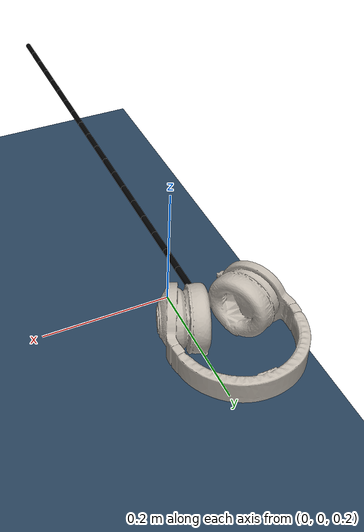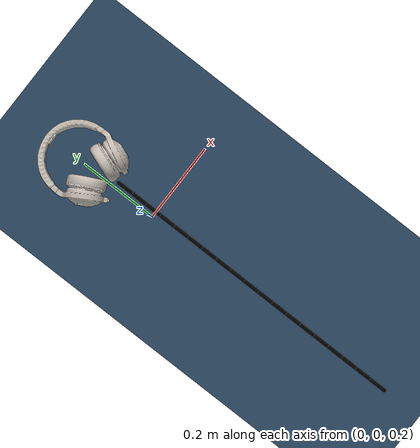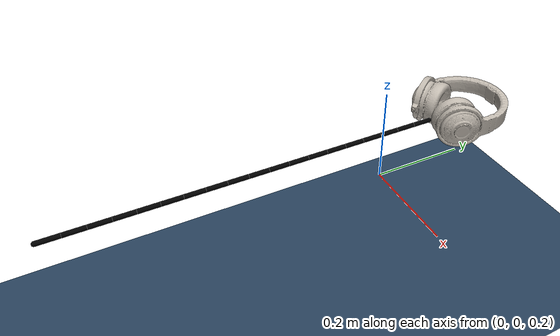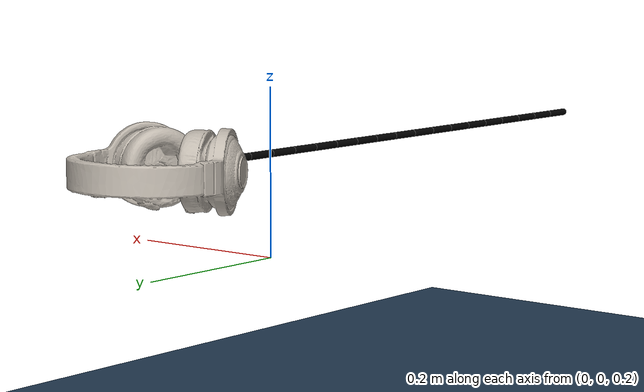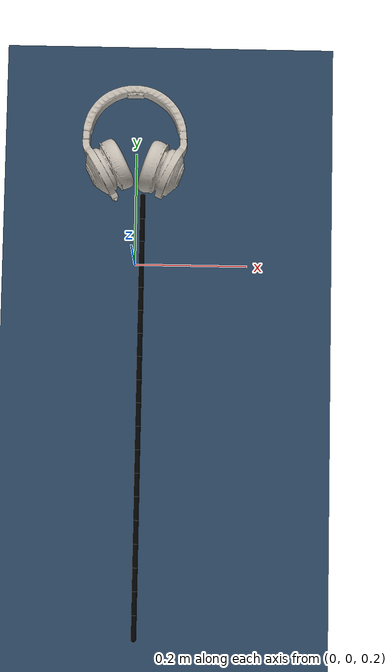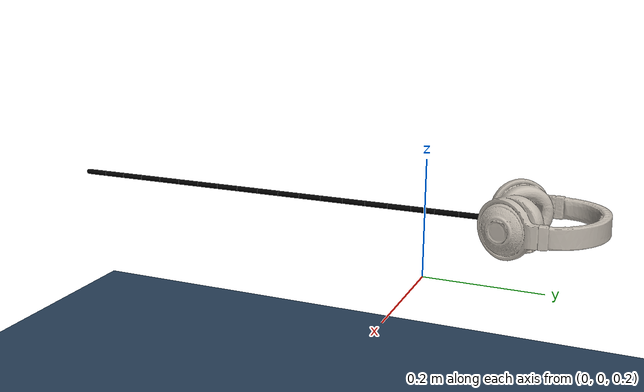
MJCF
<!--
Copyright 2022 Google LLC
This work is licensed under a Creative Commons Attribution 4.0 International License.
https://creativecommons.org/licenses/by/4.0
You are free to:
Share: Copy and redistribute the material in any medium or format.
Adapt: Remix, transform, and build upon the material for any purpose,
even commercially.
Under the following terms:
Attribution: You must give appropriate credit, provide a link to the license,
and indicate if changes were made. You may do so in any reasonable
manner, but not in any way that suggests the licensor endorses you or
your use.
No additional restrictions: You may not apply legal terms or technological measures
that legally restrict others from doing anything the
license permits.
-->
<mujoco model="Razer_Kraken_Pro_headset_Full_size_Black scene">
  <include file="model.xml"/>

  <option>
    <flag multiccd="enable"/>
  </option>

  <statistic center="0 0 0.1" extent="0.4" meansize="0.02"/>

  <visual>
    <headlight diffuse="0.6 0.6 0.6" ambient="0.3 0.3 0.3" specular="0 0 0"/>
    <rgba haze="0.15 0.25 0.35 1"/>
    <global azimuth="120" elevation="-10"/>
  </visual>

  <asset>
    <texture type="skybox" builtin="gradient" rgb1="0.3 0.5 0.7" rgb2="0 0 0" width="512" height="3072"/>
    <texture type="2d" name="groundplane" builtin="checker" mark="edge" rgb1="0.2 0.3 0.4" rgb2="0.1 0.2 0.3"
      markrgb="0.8 0.8 0.8" width="300" height="300"/>
    <material name="groundplane" texture="groundplane" texuniform="true" texrepeat="5 5" reflectance="0.2"/>
  </asset>

  <worldbody>
    <light pos="0 0 1.5" directional="true"/>
    <geom name="floor" size="0 0 0.05" type="plane" material="groundplane"/>
  </worldbody>
</mujoco>

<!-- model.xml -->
<mujoco model="Razer_Kraken_Pro_headset_Full_size_Black">

  <compiler assetdir="meshes" texturedir="materials/textures"/>

  <extension>
    <plugin plugin="mujoco.elasticity.cable">
      <instance name="composite">
        <config key="twist" value="1e2"/>
        <config key="bend" value="4e1"/>
      </instance>
    </plugin>
  </extension>

  <custom>
    <text name="composite_" data="rope_"/>
  </custom>

  <asset>
    <texture type="2d" name="texture" file="texture.png"/>
    <material name="texture" texture="texture"/>

    <mesh file="model.obj"/>
    <mesh file="coacd_part_003.obj"/>
    <mesh file="coacd_part_004.obj"/>
    <mesh file="coacd_part_007.obj"/>
    <mesh file="coacd_part_008.obj"/>
    <mesh file="coacd_part_010.obj"/>
    <mesh file="coacd_part_011.obj"/>
    <mesh file="coacd_part_012.obj"/>
    <mesh file="coacd_part_014.obj"/>
    <mesh file="coacd_part_015.obj"/>
    <mesh file="coacd_part_016.obj"/>
    <mesh file="coacd_part_017.obj"/>
    <mesh file="coacd_part_018.obj"/>
    <mesh file="coacd_part_019.obj"/>
    <mesh file="coacd_part_020.obj"/>
    <mesh file="coacd_part_021.obj"/>
    <mesh file="coacd_part_022.obj"/>
    <mesh file="coacd_part_023.obj"/>
    <mesh file="coacd_part_024.obj"/>
    <mesh file="coacd_part_025.obj"/>
    <mesh file="coacd_part_026.obj"/>
    <mesh file="coacd_part_027.obj"/>
    <mesh file="coacd_part_028.obj"/>
    <mesh file="coacd_part_029.obj"/>
    <mesh file="coacd_part_030.obj"/>
    <mesh file="coacd_part_031.obj"/>
    <mesh file="coacd_part_032.obj"/>
    <mesh file="coacd_part_033.obj"/>
    <mesh file="coacd_part_034.obj"/>
    <mesh file="coacd_part_035.obj"/>
    <mesh file="coacd_part_036.obj"/>
    <mesh file="coacd_part_037.obj"/>
    <mesh file="coacd_part_038.obj"/>
    <mesh file="coacd_part_039.obj"/>
    <mesh file="coacd_part_040.obj"/>
    <mesh file="coacd_part_041.obj"/>
    <mesh file="coacd_part_042.obj"/>
    <mesh file="coacd_part_043.obj"/>
  </asset>

  <default>
    <default class="Razer_Kraken_Pro_headset_Full_size_Black">
      <default class="visual_Razer_Kraken_Pro_headset_Full_size_Black">
        <geom type="mesh" group="2" density="200" contype="0" conaffinity="0" material="texture"/>
      </default>
      <default class="collision_Razer_Kraken_Pro_headset_Full_size_Black">
        <geom type="mesh" group="3" mass="0.0" density="0" solref=".004 1" friction="1.0 0.01 0.01" condim="6"/>
      </default>
    </default>
  </default>

  <worldbody>
    <body name="headphone_body" childclass="Razer_Kraken_Pro_headset_Full_size_Black" pos="0 0 0.3" euler="-90 0 0">
      <freejoint/>
      <body name="headphone" childclass="Razer_Kraken_Pro_headset_Full_size_Black" pos="0 0 0" euler="0 0 0">
        <geom class="visual_Razer_Kraken_Pro_headset_Full_size_Black" mesh="model"/>
        <geom class="collision_Razer_Kraken_Pro_headset_Full_size_Black" mesh="coacd_part_003" rgba="0.708 0.02 0.97 1"/>
        <geom class="collision_Razer_Kraken_Pro_headset_Full_size_Black" mesh="coacd_part_004" rgba="0.832 0.21 0.18 1"/>
        <geom class="collision_Razer_Kraken_Pro_headset_Full_size_Black" mesh="coacd_part_007" rgba="0.139 0.29 0.37 1"/>
        <geom class="collision_Razer_Kraken_Pro_headset_Full_size_Black" mesh="coacd_part_008" rgba="0.456 0.79 0.20 1"/>
        <geom class="collision_Razer_Kraken_Pro_headset_Full_size_Black" mesh="coacd_part_010" rgba="0.608 0.17 0.07 1"/>
        <geom class="collision_Razer_Kraken_Pro_headset_Full_size_Black" mesh="coacd_part_011" rgba="0.949 0.97 0.81 1"/>
        <geom class="collision_Razer_Kraken_Pro_headset_Full_size_Black" mesh="coacd_part_012" rgba="0.305 0.10 0.68 1"/>
        <geom class="collision_Razer_Kraken_Pro_headset_Full_size_Black" mesh="coacd_part_014" rgba="0.034 0.91 0.26 1"/>
        <geom class="collision_Razer_Kraken_Pro_headset_Full_size_Black" mesh="coacd_part_015" rgba="0.663 0.31 0.52 1"/>
        <geom class="collision_Razer_Kraken_Pro_headset_Full_size_Black" mesh="coacd_part_016" rgba="0.547 0.18 0.97 1"/>
        <geom class="collision_Razer_Kraken_Pro_headset_Full_size_Black" mesh="coacd_part_017" rgba="0.775 0.94 0.89 1"/>
        <geom class="collision_Razer_Kraken_Pro_headset_Full_size_Black" mesh="coacd_part_018" rgba="0.598 0.92 0.09 1"/>
        <geom class="collision_Razer_Kraken_Pro_headset_Full_size_Black" mesh="coacd_part_019" rgba="0.196 0.05 0.33 1"/>
        <geom class="collision_Razer_Kraken_Pro_headset_Full_size_Black" mesh="coacd_part_020" rgba="0.389 0.27 0.83 1"/>
        <geom class="collision_Razer_Kraken_Pro_headset_Full_size_Black" mesh="coacd_part_021" rgba="0.357 0.28 0.54 1"/>
        <geom class="collision_Razer_Kraken_Pro_headset_Full_size_Black" mesh="coacd_part_022" rgba="0.141 0.80 0.07 1"/>
        <geom class="collision_Razer_Kraken_Pro_headset_Full_size_Black" mesh="coacd_part_023" rgba="0.987 0.77 0.20 1"/>
        <geom class="collision_Razer_Kraken_Pro_headset_Full_size_Black" mesh="coacd_part_024" rgba="0.006 0.82 0.71 1"/>
        <geom class="collision_Razer_Kraken_Pro_headset_Full_size_Black" mesh="coacd_part_025" rgba="0.729 0.77 0.07 1"/>
        <geom class="collision_Razer_Kraken_Pro_headset_Full_size_Black" mesh="coacd_part_026" rgba="0.358 0.12 0.86 1"/>
        <geom class="collision_Razer_Kraken_Pro_headset_Full_size_Black" mesh="coacd_part_027" rgba="0.623 0.33 0.06 1"/>
        <geom class="collision_Razer_Kraken_Pro_headset_Full_size_Black" mesh="coacd_part_028" rgba="0.311 0.33 0.73 1"/>
        <geom class="collision_Razer_Kraken_Pro_headset_Full_size_Black" mesh="coacd_part_029" rgba="0.638 0.89 0.47 1"/>
        <geom class="collision_Razer_Kraken_Pro_headset_Full_size_Black" mesh="coacd_part_030" rgba="0.120 0.71 0.76 1"/>
        <geom class="collision_Razer_Kraken_Pro_headset_Full_size_Black" mesh="coacd_part_031" rgba="0.561 0.77 0.49 1"/>
        <geom class="collision_Razer_Kraken_Pro_headset_Full_size_Black" mesh="coacd_part_032" rgba="0.523 0.43 0.03 1"/>
        <geom class="collision_Razer_Kraken_Pro_headset_Full_size_Black" mesh="coacd_part_033" rgba="0.108 0.03 0.64 1"/>
        <geom class="collision_Razer_Kraken_Pro_headset_Full_size_Black" mesh="coacd_part_034" rgba="0.314 0.51 0.91 1"/>
        <geom class="collision_Razer_Kraken_Pro_headset_Full_size_Black" mesh="coacd_part_035" rgba="0.249 0.41 0.76 1"/>
        <geom class="collision_Razer_Kraken_Pro_headset_Full_size_Black" mesh="coacd_part_036" rgba="0.229 0.08 0.29 1"/>
        <geom class="collision_Razer_Kraken_Pro_headset_Full_size_Black" mesh="coacd_part_037" rgba="0.161 0.93 0.81 1"/>
        <geom class="collision_Razer_Kraken_Pro_headset_Full_size_Black" mesh="coacd_part_038" rgba="0.633 0.87 0.80 1"/>
        <geom class="collision_Razer_Kraken_Pro_headset_Full_size_Black" mesh="coacd_part_039" rgba="0.187 0.89 0.54 1"/>
        <geom class="collision_Razer_Kraken_Pro_headset_Full_size_Black" mesh="coacd_part_040" rgba="0.807 0.90 0.32 1"/>
        <geom class="collision_Razer_Kraken_Pro_headset_Full_size_Black" mesh="coacd_part_041" rgba="0.110 0.23 0.43 1"/>
        <geom class="collision_Razer_Kraken_Pro_headset_Full_size_Black" mesh="coacd_part_042" rgba="0.818 0.86 0.01 1"/>
        <geom class="collision_Razer_Kraken_Pro_headset_Full_size_Black" mesh="coacd_part_043" rgba="0.511 0.42 0.22 1"/>
      </body>

      <body name="cable_body" pos="0 0 0.3">
        <body name="B_first" pos="0.015 -0.02 -0.2" quat="0 -0.707107 0 0.707107">
          <joint name="J_first" pos="0 0 0" type="ball" group="3" actuatorfrclimited="false" damping="0.001"/>
          <geom name="G0" size="0.0045 0.0197368" pos="0.0197368 0 0" quat="0.707107 0 -0.707107 0" type="capsule" friction="0.1 0.001 0.001" rgba="0 0 0 1"/>
          <site name="S_first" pos="0 0 0" group="3"/>
          <plugin instance="composite"/>
          <body name="B_1" pos="0.0394737 0 0">
            <joint name="J_1" pos="0 0 0" type="ball" group="3" actuatorfrclimited="false" damping="0.001"/>
            <geom name="G1" size="0.0045 0.0197368" pos="0.0197368 0 0" quat="0.707107 0 -0.707107 0" type="capsule" friction="0.1 0.001 0.001" rgba="0 0 0 1"/>
            <plugin instance="composite"/>
            <body name="B_2" pos="0.0394737 0 0">
              <joint name="J_2" pos="0 0 0" type="ball" group="3" actuatorfrclimited="false" damping="0.001"/>
              <geom name="G2" size="0.0045 0.0197368" pos="0.0197368 0 0" quat="0.707107 0 -0.707107 0" type="capsule" friction="0.1 0.001 0.001" rgba="0 0 0 1"/>
              <plugin instance="composite"/>
              <body name="B_3" pos="0.0394737 0 0">
                <joint name="J_3" pos="0 0 0" type="ball" group="3" actuatorfrclimited="false" damping="0.001"/>
                <geom name="G3" size="0.0045 0.0197368" pos="0.0197368 0 0" quat="0.707107 0 -0.707107 0" type="capsule" friction="0.1 0.001 0.001" rgba="0 0 0 1"/>
                <plugin instance="composite"/>
                <body name="B_4" pos="0.0394737 0 0">
                  <joint name="J_4" pos="0 0 0" type="ball" group="3" actuatorfrclimited="false" damping="0.001"/>
                  <geom name="G4" size="0.0045 0.0197368" pos="0.0197368 0 0" quat="0.707107 0 -0.707107 0" type="capsule" friction="0.1 0.001 0.001" rgba="0 0 0 1"/>
                  <plugin instance="composite"/>
                  <body name="B_5" pos="0.0394737 0 0">
                    <joint name="J_5" pos="0 0 0" type="ball" group="3" actuatorfrclimited="false" damping="0.001"/>
                    <geom name="G5" size="0.0045 0.0197368" pos="0.0197368 0 0" quat="0.707107 0 -0.707107 0" type="capsule" friction="0.1 0.001 0.001" rgba="0 0 0 1"/>
                    <plugin instance="composite"/>
                    <body name="B_6" pos="0.0394737 0 0">
                      <joint name="J_6" pos="0 0 0" type="ball" group="3" actuatorfrclimited="false" damping="0.001"/>
                      <geom name="G6" size="0.0045 0.0197368" pos="0.0197368 0 0" quat="0.707107 0 -0.707107 0" type="capsule" friction="0.1 0.001 0.001" rgba="0 0 0 1"/>
                      <plugin instance="composite"/>
                      <body name="B_7" pos="0.0394737 0 0">
                        <joint name="J_7" pos="0 0 0" type="ball" group="3" actuatorfrclimited="false" damping="0.001"/>
                        <geom name="G7" size="0.0045 0.0197368" pos="0.0197368 0 0" quat="0.707107 0 -0.707107 0" type="capsule" friction="0.1 0.001 0.001" rgba="0 0 0 1"/>
                        <plugin instance="composite"/>
                        <body name="B_8" pos="0.0394737 0 0">
                          <joint name="J_8" pos="0 0 0" type="ball" group="3" actuatorfrclimited="false" damping="0.001"/>
                          <geom name="G8" size="0.0045 0.0197368" pos="0.0197368 0 0" quat="0.707107 0 -0.707107 0" type="capsule" friction="0.1 0.001 0.001" rgba="0 0 0 1"/>
                          <plugin instance="composite"/>
                          <body name="B_9" pos="0.0394737 0 0">
                            <joint name="J_9" pos="0 0 0" type="ball" group="3" actuatorfrclimited="false" damping="0.001"/>
                            <geom name="G9" size="0.0045 0.0197369" pos="0.0197369 0 0" quat="0.707107 0 -0.707107 0" type="capsule" friction="0.1 0.001 0.001" rgba="0 0 0 1"/>
                            <plugin instance="composite"/>
                            <body name="B_10" pos="0.0394737 0 0">
                              <joint name="J_10" pos="0 0 0" type="ball" group="3" actuatorfrclimited="false" damping="0.001"/>
                              <geom name="G10" size="0.0045 0.0197368" pos="0.0197368 0 0" quat="0.707107 0 -0.707107 0" type="capsule" friction="0.1 0.001 0.001" rgba="0 0 0 1"/>
                              <plugin instance="composite"/>
                              <body name="B_11" pos="0.0394737 0 0">
                                <joint name="J_11" pos="0 0 0" type="ball" group="3" actuatorfrclimited="false" damping="0.001"/>
                                <geom name="G11" size="0.0045 0.0197368" pos="0.0197368 0 0" quat="0.707107 0 -0.707107 0" type="capsule" friction="0.1 0.001 0.001" rgba="0 0 0 1"/>
                                <plugin instance="composite"/>
                                <body name="B_12" pos="0.0394737 0 0">
                                  <joint name="J_12" pos="0 0 0" type="ball" group="3" actuatorfrclimited="false" damping="0.001"/>
                                  <geom name="G12" size="0.0045 0.0197368" pos="0.0197368 0 0" quat="0.707107 0 -0.707107 0" type="capsule" friction="0.1 0.001 0.001" rgba="0 0 0 1"/>
                                  <plugin instance="composite"/>
                                  <body name="B_13" pos="0.0394737 0 0">
                                    <joint name="J_13" pos="0 0 0" type="ball" group="3" actuatorfrclimited="false" damping="0.001"/>
                                    <geom name="G13" size="0.0045 0.0197368" pos="0.0197368 0 0" quat="0.707107 0 -0.707107 0" type="capsule" friction="0.1 0.001 0.001" rgba="0 0 0 1"/>
                                    <plugin instance="composite"/>
                                    <body name="B_14" pos="0.0394737 0 0">
                                      <joint name="J_14" pos="0 0 0" type="ball" group="3" actuatorfrclimited="false" damping="0.001"/>
                                      <geom name="G14" size="0.0045 0.0197369" pos="0.0197369 0 0" quat="0.707107 0 -0.707107 0" type="capsule" friction="0.1 0.001 0.001" rgba="0 0 0 1"/>
                                      <plugin instance="composite"/>
                                      <body name="B_15" pos="0.0394737 0 0">
                                        <joint name="J_15" pos="0 0 0" type="ball" group="3" actuatorfrclimited="false" damping="0.001"/>
                                        <geom name="G15" size="0.0045 0.0197368" pos="0.0197368 0 0" quat="0.707107 0 -0.707107 0" type="capsule" friction="0.1 0.001 0.001" rgba="0 0 0 1"/>
                                        <plugin instance="composite"/>
                                        <body name="B_16" pos="0.0394737 0 0">
                                          <joint name="J_16" pos="0 0 0" type="ball" group="3" actuatorfrclimited="false" damping="0.001"/>
                                          <geom name="G16" size="0.0045 0.0197369" pos="0.0197369 0 0" quat="0.707107 0 -0.707107 0" type="capsule" friction="0.1 0.001 0.001" rgba="0 0 0 1"/>
                                          <plugin instance="composite"/>
                                          <body name="B_17" pos="0.0394737 0 0">
                                            <joint name="J_17" pos="0 0 0" type="ball" group="3" actuatorfrclimited="false" damping="0.001"/>
                                            <geom name="G17" size="0.0045 0.0197368" pos="0.0197368 0 0" quat="0.707107 0 -0.707107 0" type="capsule" friction="0.1 0.001 0.001" rgba="0 0 0 1"/>
                                            <plugin instance="composite"/>
                                            <body name="B_last" pos="0.0394737 0 0">
                                              <joint name="J_last" pos="0 0 0" type="ball" group="3" actuatorfrclimited="false" damping="0.001"/>
                                              <geom name="G18" size="0.0045 0.0197369" pos="0.0197369 0 0" quat="0.707107 0 -0.707107 0" type="capsule" friction="0.1 0.001 0.001" rgba="0 0 0 1"/>
                                              <site name="S_last" pos="0.0394737 0 0" group="3"/>
                                              <plugin instance="composite"/>
                                            </body>
                                          </body>
                                        </body>
                                      </body>
                                    </body>
                                  </body>
                                </body>
                              </body>
                            </body>
                          </body>
                        </body>
                      </body>
                    </body>
                  </body>
                </body>
              </body>
            </body>
          </body>
        </body>
      </body>
    </body>
  </worldbody>

  <contact>
    <exclude body1="B_first" body2="B_1"/>
    <exclude body1="B_1" body2="B_2"/>
    <exclude body1="B_2" body2="B_3"/>
    <exclude body1="B_3" body2="B_4"/>
    <exclude body1="B_4" body2="B_5"/>
    <exclude body1="B_5" body2="B_6"/>
    <exclude body1="B_6" body2="B_7"/>
    <exclude body1="B_7" body2="B_8"/>
    <exclude body1="B_8" body2="B_9"/>
    <exclude body1="B_9" body2="B_10"/>
    <exclude body1="B_10" body2="B_11"/>
    <exclude body1="B_11" body2="B_12"/>
    <exclude body1="B_12" body2="B_13"/>
    <exclude body1="B_13" body2="B_14"/>
    <exclude body1="B_14" body2="B_15"/>
    <exclude body1="B_15" body2="B_16"/>
    <exclude body1="B_16" body2="B_17"/>
  </contact>

</mujoco>
